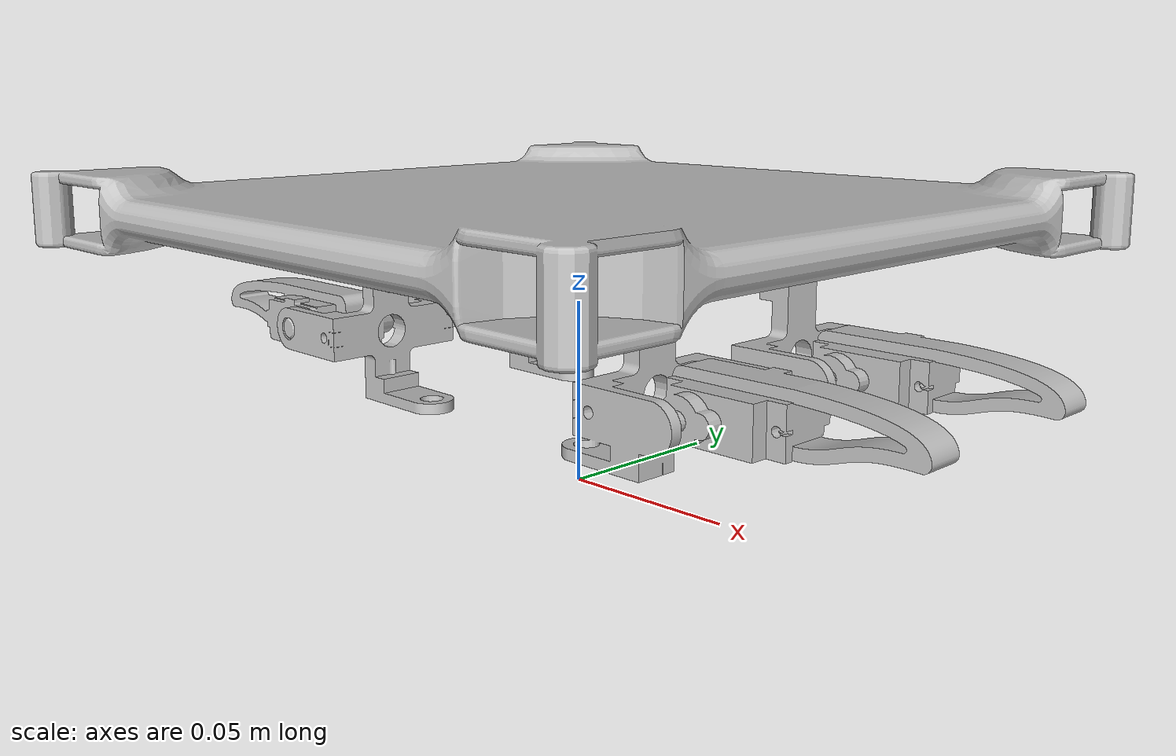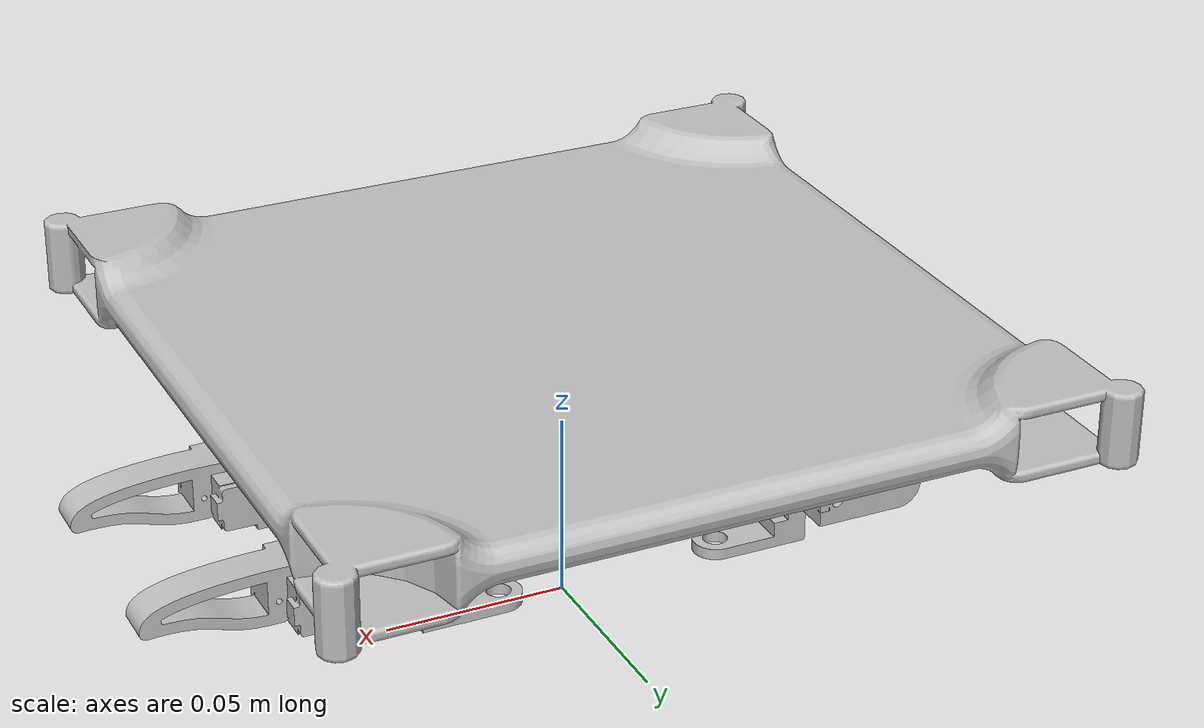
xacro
<?xml version="1.0" encoding="utf-8"?>
<robot name="spiderbotv8" xmlns:xacro="http://ros.org/wiki/xacro">
  <link name= "base_footprint"/>
  <joint name="base" type="fixed">
    <origin xyz="0.0 0.0 0.0" rpy="0 0 0"/>
    <parent link="base_footprint" />
    <child link="base_link" />
    <axis xyz="0 0 0" />
  </joint>
  <link name="base_link">
    <inertial>
      <origin
        xyz="6.52377531783468E-05 -0.0021170715917473 0.0364107331720625"
        rpy="0 0 0" />
      <mass value="0.0726541894616852" />
      <inertia
        ixx="3.02647463521448E-05"
        ixy="1.57081847985685E-09"
        ixz="3.15890627766527E-11"
        iyy="1.78058902607528E-05"
        iyz="-1.01459254458863E-07"
        izz="4.36287378114362E-05" />
    </inertial>
    <visual>
      <origin
        xyz="0 0 0"
        rpy="0 0 0" />
      <geometry>
        <mesh filename="package://spiderbotv8_description/meshes/base_link.STL" />
      </geometry>
      <material name="">
        <color rgba="0.752941176470588 0.752941176470588 0.752941176470588 1" />
      </material>
    </visual>
    <collision>
      <origin
        xyz="0 0 0"
        rpy="0 0 0" />
      <geometry>
        <mesh filename="package://spiderbotv8_description/meshes/base_link.STL" />
      </geometry>
    </collision>
  </link>
  <link
    name="r1">
    <inertial>
      <origin
        xyz="-0.020499999920902 0.000389285101961867 0.0198892805772913"
        rpy="0 0 0" />
      <mass
        value="0.00713023456386856" />
      <inertia
        ixx="7.56087099566393E-07"
        ixy="2.42840649896817E-09"
        ixz="-2.42840649896825E-09"
        iyy="5.95760525058341E-07"
        iyz="2.50084225320641E-09"
        izz="5.95760523642093E-07" />
    </inertial>
    <visual>
      <origin
        xyz="0 0 0"
        rpy="0 0 0" />
      <geometry>
        <mesh
          filename="package://spiderbotv8_description/meshes/r1.STL" />
      </geometry>
      <material
        name="">
        <color
          rgba="0.752941176470588 0.752941176470588 0.752941176470588 1" />
      </material>
    </visual>
    <collision>
      <origin
        xyz="0 0 0"
        rpy="0 0 0" />
      <geometry>
        <mesh
          filename="package://spiderbotv8_description/meshes/r1.STL" />
      </geometry>
    </collision>
  </link>
  <joint
    name="right1"
    type="revolute">
    <origin
      xyz="-0.030488 -0.027296 0.0193"
      rpy="0 0 0" />
    <parent
      link="base_link" />
    <child
      link="r1" />
    <axis
      xyz="0 0 -1" />
    <limit
      lower="-1.57"
      upper="1.57"
      effort="100"
      velocity="5" />
  </joint>
  <link
    name="sr1">
    <inertial>
      <origin
        xyz="-0.0103855500283455 0.0172280687962712 0.000907834339010391"
        rpy="0 0 0" />
      <mass
        value="0.0122153753102686" />
      <inertia
        ixx="6.06191507620996E-07"
        ixy="-2.6357706811751E-08"
        ixz="-4.62613535616074E-08"
        iyy="2.09883870458556E-06"
        iyz="-5.7703659796975E-16"
        izz="2.33635633104651E-06" />
    </inertial>
    <visual>
      <origin
        xyz="0 0 0"
        rpy="0 0 0" />
      <geometry>
        <mesh
          filename="package://spiderbotv8_description/meshes/sr1.STL" />
      </geometry>
      <material
        name="">
        <color
          rgba="0.752941176470588 0.752941176470588 0.752941176470588 1" />
      </material>
    </visual>
    <collision>
      <origin
        xyz="0 0 0"
        rpy="0 0 0" />
      <geometry>
        <mesh
          filename="package://spiderbotv8_description/meshes/sr1.STL" />
      </geometry>
    </collision>
  </link>
  <joint
    name="suppright1"
    type="revolute">
    <origin
      xyz="-0.041 -0.0195 0.0195"
      rpy="0 0 0" />
    <parent
      link="r1" />
    <child
      link="sr1" />
    <axis
      xyz="0 -1 0" />
    <limit
      lower="-1.57"
      upper="1.57"
      effort="100"
      velocity="5" />
  </joint>

<!-- left link front -->

  <link
    name="l1">
    <inertial>
      <origin
        xyz="-0.020499999920902 0.000389285101961867 0.0198892805772913"
        rpy="0 0 0" />
      <mass
        value="0.00713023456386856" />
      <inertia
        ixx="7.56087099566393E-07"
        ixy="2.42840649896817E-09"
        ixz="-2.42840649896825E-09"
        iyy="5.95760525058341E-07"
        iyz="2.50084225320641E-09"
        izz="5.95760523642093E-07" />
    </inertial>
    <visual>
      <origin
        xyz="0 0 0"
        rpy="0 0 0" />
      <geometry>
        <mesh
          filename="package://spiderbotv8_description/meshes/r1.STL" />
      </geometry>
      <material
        name="">
        <color
          rgba="0.752941176470588 0.752941176470588 0.752941176470588 1" />
      </material>
    </visual>
    <collision>
      <origin
        xyz="0 0 0"
        rpy="0 0 0" />
      <geometry>
        <mesh
          filename="package://spiderbotv8_description/meshes/r1.STL" />
      </geometry>
    </collision>
  </link>
  <joint
    name="left1"
    type="revolute">
    <origin
      xyz="0.030488 -0.027296 0.0193"
      rpy="0 0 3.1417" />
    <parent
      link="base_link" />
    <child
      link="l1" />
    <axis
      xyz="0 0 -1" />
    <limit
      lower="-1.57"
      upper="1.57"
      effort="100"
      velocity="5" />
  </joint>
  <link
    name="sl1">
    <inertial>
      <origin
        xyz="-0.0103855500283455 0.0172280687962712 0.000907834339010391"
        rpy="0 0 0" />
      <mass
        value="0.0122153753102686" />
      <inertia
        ixx="6.06191507620996E-07"
        ixy="-2.6357706811751E-08"
        ixz="-4.62613535616074E-08"
        iyy="2.09883870458556E-06"
        iyz="-5.7703659796975E-16"
        izz="2.33635633104651E-06" />
    </inertial>
    <visual>
      <origin
        xyz="0 0 0"
        rpy="0 0 0" />
      <geometry>
        <mesh
          filename="package://spiderbotv8_description/meshes/sr1.STL" />
      </geometry>
      <material
        name="">
        <color
          rgba="0.752941176470588 0.752941176470588 0.752941176470588 1" />
      </material>
    </visual>
    <collision>
      <origin
        xyz="0 0 0"
        rpy="0 0 0" />
      <geometry>
        <mesh
          filename="package://spiderbotv8_description/meshes/sr1.STL" />
      </geometry>
    </collision>
  </link>
  <joint
    name="suppleft1"
    type="revolute">
    <origin
      xyz="-0.041 -0.0195 0.0195"
      rpy="0 0 0" />
    <parent
      link="l1" />
    <child
      link="sl1" />
    <axis
      xyz="0 -1 0" />
    <limit
      lower="-1.57"
      upper="1.57"
      effort="100"
      velocity="5" />
  </joint>

    <link
    name="r2">
    <inertial>
      <origin
        xyz="-0.020499999920902 0.000389285101961867 0.0198892805772913"
        rpy="0 0 0" />
      <mass value="0.00713023456386856" />
      <inertia
        ixx="7.56087099566393E-07"
        ixy="2.42840649896817E-09"
        ixz="-2.42840649896825E-09"
        iyy="5.95760525058341E-07"
        iyz="2.50084225320641E-09"
        izz="5.95760523642093E-07" />
    </inertial>
    <visual>
      <origin
        xyz="0 0 0"
        rpy="0 0 0" />
      <geometry>
        <mesh filename="package://spiderbotv8_description/meshes/r1.STL" />
      </geometry>
      <material name="">
        <color rgba="0.752941176470588 0.752941176470588 0.752941176470588 1" />
      </material>
    </visual>
    <collision>
      <origin
        xyz="0 0 0"
        rpy="0 0 0" />
      <geometry>
        <mesh filename="package://spiderbotv8_description/meshes/r1.STL" />
      </geometry>
    </collision>
  </link>
  <joint
    name="right2"
    type="revolute">
    <origin
      xyz="-0.030488 0.027296 0.0193"
      rpy="0 0 0" />
    <parent
      link="base_link" />
    <child
      link="r2" />
    <axis
      xyz="0 0 -1" />
    <limit
      lower="-1.57"
      upper="1.57"
      effort="100"
      velocity="5" />
  </joint>
  <link
    name="sr2">
    <inertial>
      <origin
        xyz="-0.0103855500283455 0.0172280687962712 0.000907834339010391"
        rpy="0 0 0" />
      <mass
        value="0.0122153753102686" />
      <inertia
        ixx="6.06191507620996E-07"
        ixy="-2.6357706811751E-08"
        ixz="-4.62613535616074E-08"
        iyy="2.09883870458556E-06"
        iyz="-5.7703659796975E-16"
        izz="2.33635633104651E-06" />
    </inertial>
    <visual>
      <origin
        xyz="0 0 0"
        rpy="0 0 0" />
      <geometry>
        <mesh
          filename="package://spiderbotv8_description/meshes/sr1.STL" />
      </geometry>
      <material
        name="">
        <color
          rgba="0.752941176470588 0.752941176470588 0.752941176470588 1" />
      </material>
    </visual>
    <collision>
      <origin
        xyz="0 0 0"
        rpy="0 0 0" />
      <geometry>
        <mesh
          filename="package://spiderbotv8_description/meshes/sr1.STL" />
      </geometry>
    </collision>
  </link>
  <joint
    name="suppright2"
    type="revolute">
    <origin
      xyz="-0.041 -0.0195 0.0195"
      rpy="0 0 0" />
    <parent
      link="r2" />
    <child
      link="sr2" />
    <axis
      xyz="0 -1 0" />
    <limit
      lower="-1.57"
      upper="1.57"
      effort="100"
      velocity="5" />
  </joint>

<!-- back left -->
  <link
    name="l2">
    <inertial>
      <origin
        xyz="-0.020499999920902 0.000389285101961867 0.0198892805772913"
        rpy="0 0 0" />
      <mass
        value="0.00713023456386856" />
      <inertia
        ixx="7.56087099566393E-07"
        ixy="2.42840649896817E-09"
        ixz="-2.42840649896825E-09"
        iyy="5.95760525058341E-07"
        iyz="2.50084225320641E-09"
        izz="5.95760523642093E-07" />
    </inertial>
    <visual>
      <origin
        xyz="0 0 0"
        rpy="0 0 0" />
      <geometry>
        <mesh filename="package://spiderbotv8_description/meshes/r1.STL" />
      </geometry>
      <material name="">
        <color rgba="0.752941176470588 0.752941176470588 0.752941176470588 1" />
      </material>
    </visual>
    <collision>
      <origin
        xyz="0 0 0"
        rpy="0 0 0" />
      <geometry>
        <mesh filename="package://spiderbotv8_description/meshes/r1.STL" />
      </geometry>
    </collision>
  </link>
  <joint
    name="left2"
    type="revolute">
    <origin
      xyz="0.030488 0.027296 0.0193"
      rpy="0 0 3.1417" />
    <parent
      link="base_link" />
    <child
      link="l2" />
    <axis
      xyz="0 0 -1" />
    <limit
      lower="-1.57"
      upper="1.57"
      effort="100"
      velocity="5" />
  </joint>
  <link
    name="sl2">
    <inertial>
      <origin
        xyz="-0.0103855500283455 0.0172280687962712 0.000907834339010391"
        rpy="0 0 0" />
      <mass
        value="0.0122153753102686" />
      <inertia
        ixx="6.06191507620996E-07"
        ixy="-2.6357706811751E-08"
        ixz="-4.62613535616074E-08"
        iyy="2.09883870458556E-06"
        iyz="-5.7703659796975E-16"
        izz="2.33635633104651E-06" />
    </inertial>
    <visual>
      <origin
        xyz="0 0 0"
        rpy="0 0 0" />
      <geometry>
        <mesh
          filename="package://spiderbotv8_description/meshes/sr1.STL" />
      </geometry>
      <material
        name="">
        <color
          rgba="0.752941176470588 0.752941176470588 0.752941176470588 1" />
      </material>
    </visual>
    <collision>
      <origin
        xyz="0 0 0"
        rpy="0 0 0" />
      <geometry>
        <mesh
          filename="package://spiderbotv8_description/meshes/sr1.STL" />
      </geometry>
    </collision>
  </link>
  <joint
    name="suppleft2"
    type="revolute">
    <origin
      xyz="-0.041 -0.0195 0.0195"
      rpy="0 0 0" />
    <parent
      link="l2" />
    <child
      link="sl2" />
    <axis
      xyz="0 -1 0" />
    <limit
      lower="-1.57"
      upper="1.57"
      effort="100"
      velocity="5" />
  </joint>

<xacro:include filename="$(find spiderbotv8_description)/urdf/gazebo.xacro" />
<xacro:include filename="$(find spiderbotv8_description)/urdf/transmission.xacro" />
</robot>
